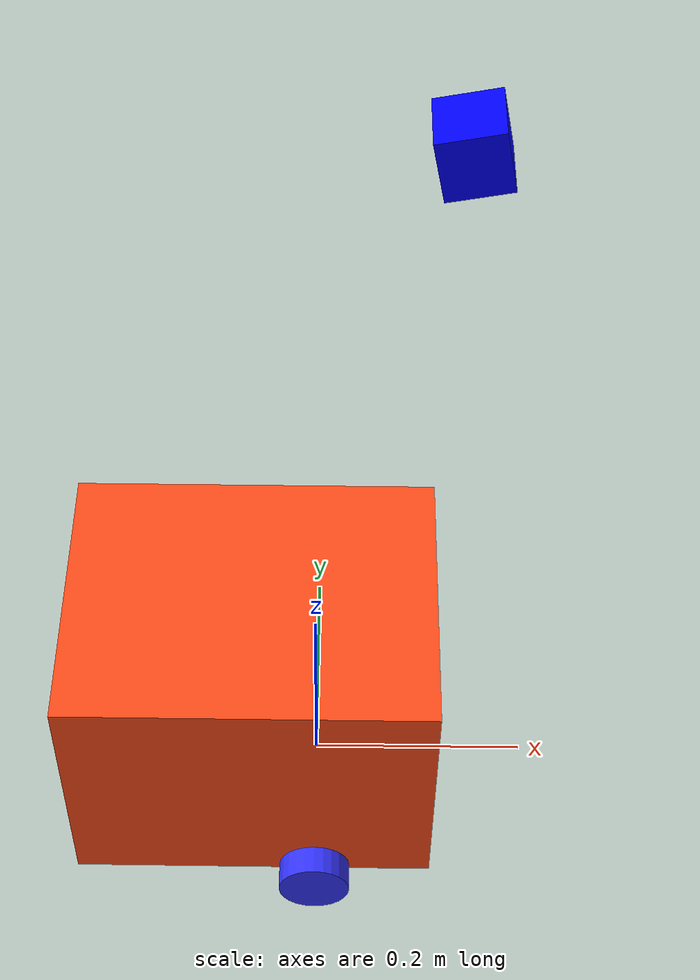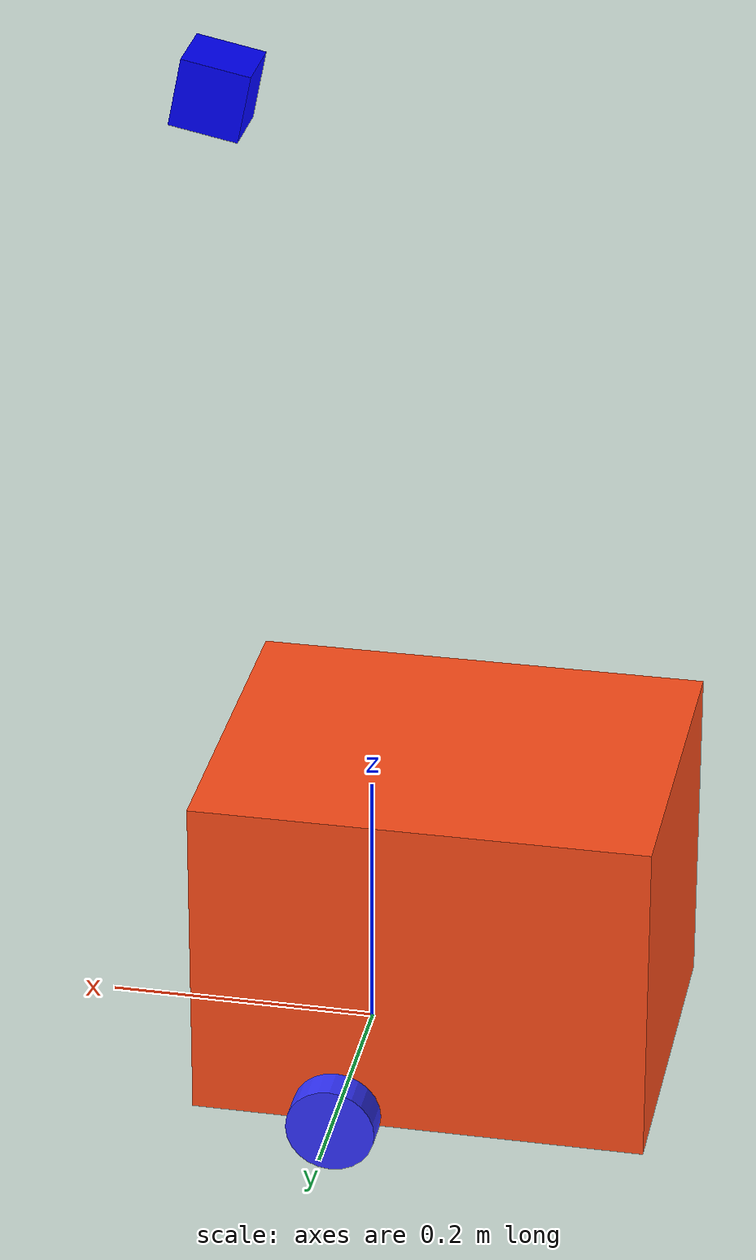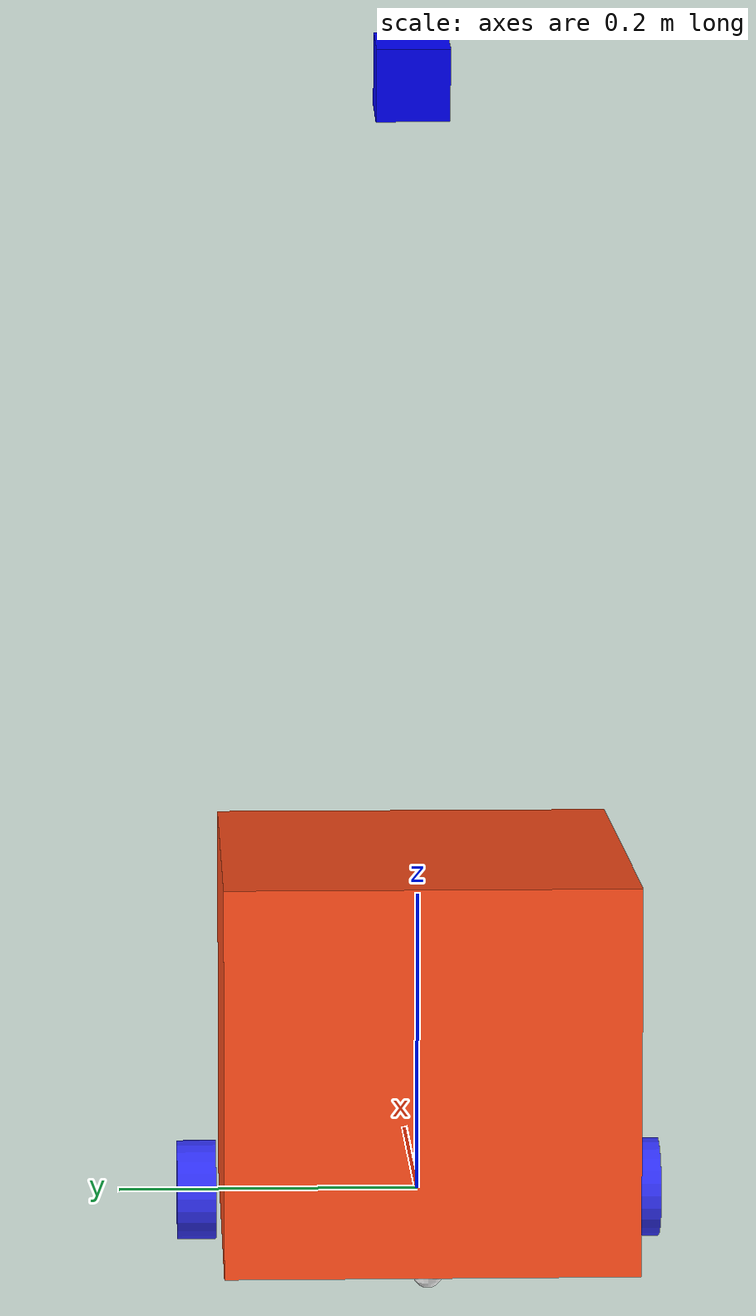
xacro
<?xml version="1.0"?>
<robot xmlns:xacro="http://www.ros.org/wiki/xacro" name="cbrn_robot">

  <xacro:arg name="use_ros2_control" default="true"/>
  <xacro:arg name="sim_mode" default="true"/>

  <xacro:include filename="robot_core.xacro" />
  <xacro:include filename="camera.xacro" />

  <xacro:if value="$(arg use_ros2_control)">
    <xacro:include filename="ros2_control.xacro" />
    <xacro:diff_drive_ros2_control sim_mode="$(arg sim_mode)"/>
  </xacro:if>

  <xacro:unless value="$(arg use_ros2_control)">
    <xacro:include filename="gazebo_control.xacro" />
  </xacro:unless>

</robot>

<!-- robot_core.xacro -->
<robot xmlns:xacro="http://www.ros.org/wiki/xacro" >

    <xacro:include filename="inertial_macros.xacro"/>

    <xacro:property name="chassis_length" value="0.335"/>
    <xacro:property name="chassis_width" value="0.265"/>
    <xacro:property name="chassis_height" value="0.25"/>
    <xacro:property name="chassis_mass" value="1.0"/>
    <xacro:property name="wheel_radius" value="0.033"/>
    <xacro:property name="wheel_thickness" value="0.026"/>
    <xacro:property name="wheel_mass" value="0.05"/>
    <xacro:property name="wheel_offset_x" value="0.226"/>
    <xacro:property name="wheel_offset_y" value="0.1485"/>
    <xacro:property name="wheel_offset_z" value="0.01"/>
    <xacro:property name="caster_wheel_radius" value="0.01"/>
    <xacro:property name="caster_wheel_mass" value="0.01"/>
    <xacro:property name="caster_wheel_offset_x" value="0.075"/>
    <xacro:property name="caster_wheel_offset_z" value="${wheel_offset_z - wheel_radius + caster_wheel_radius}"/>

    <material name="white"><color rgba="1 1 1 1" /></material>
    <material name="orange"><color rgba="1 0.3 0.1 1"/></material>
    <material name="blue"><color rgba="0.2 0.2 1 1"/></material>
    <material name="black"><color rgba="0 0 0 1"/></material>
    <material name="red"><color rgba="1 0 0 1"/></material>

    <!-- BASE LINK -->

    <link name="base_link">
    </link>

    <!-- BASE_FOOTPRINT LINK -->

    <joint name="base_footprint_joint" type="fixed">
        <parent link="base_link"/>
        <child link="base_footprint"/>
        <origin xyz="0 0 0" rpy="0 0 0"/>
    </joint>

    <link name="base_footprint">
    </link>

    <!-- CHASSIS LINK -->

    <joint name="chassis_joint" type="fixed">
        <parent link="base_link"/>
        <child link="chassis"/>
        <origin xyz="${-wheel_offset_x} 0 ${-wheel_offset_z}"/>
    </joint>

    <link name="chassis">
        <visual>
            <origin xyz="${chassis_length/2} 0 ${chassis_height/2}"/>
            <geometry>
                <box size="${chassis_length} ${chassis_width} ${chassis_height}"/>
            </geometry>
            <material name="orange"/>
        </visual>
        <collision>
            <origin xyz="${chassis_length/2} 0 ${chassis_height/2}"/>
            <geometry>
                <box size="${chassis_length} ${chassis_width} ${chassis_height}"/>
            </geometry>
        </collision>
        <xacro:inertial_box mass="5.5" x="${chassis_length}" y="${chassis_width}" z="${chassis_height}">
            <origin xyz="${chassis_length/2} 0 ${chassis_height/2}" rpy="0 0 0"/>
        </xacro:inertial_box>
    </link>

    <gazebo reference="chassis">
        <material>Gazebo/Orange</material>
    </gazebo>

    <!-- LEFT WHEEL LINK -->

    <joint name="left_wheel_joint" type="continuous">
        <parent link="base_link"/>
        <child link="left_wheel_link"/>
        <origin xyz="0 ${wheel_offset_y} 0" rpy="-${pi/2} 0 0" />
        <axis xyz="0 0 1"/>
    </joint>

    <link name="left_wheel_link">
        <visual>
            <geometry>
                <cylinder radius="${wheel_radius}" length="${wheel_thickness}"/>
            </geometry>
            <material name="blue"/>
        </visual>
        <collision>
            <geometry>
                <cylinder radius="${wheel_radius}" length="${wheel_thickness}"/>
            </geometry>
        </collision>
        <xacro:inertial_cylinder mass="${wheel_mass}" length="${wheel_thickness}" radius="${wheel_radius}">
            <origin xyz="0 0 0" rpy="0 0 0"/>
        </xacro:inertial_cylinder>
    </link>

    <gazebo reference="left_wheel_link">
        <material>Gazebo/Blue</material>
        <mu1>1.0</mu1>
        <mu2>1.0</mu2>
        <kp>1000000.0</kp>
        <kd>100.0</kd>
        <minDepth>0.001</minDepth>
    </gazebo>

    <!-- RIGHT WHEEL LINK -->

    <joint name="right_wheel_joint" type="continuous">
        <parent link="base_link"/>
        <child link="right_wheel_link"/>
        <origin xyz="0 ${-wheel_offset_y} 0" rpy="${pi/2} 0 0" />
        <axis xyz="0 0 -1"/>
    </joint>

    <link name="right_wheel_link">
        <visual>
            <geometry>
                <cylinder radius="${wheel_radius}" length="${wheel_thickness}"/>
            </geometry>
            <material name="blue"/>
        </visual>
        <collision>
            <geometry>
                <cylinder radius="${wheel_radius}" length="${wheel_thickness}"/>
            </geometry>
        </collision>
        <xacro:inertial_cylinder mass="${wheel_mass}" length="${wheel_thickness}" radius="${wheel_radius}">
            <origin xyz="0 0 0" rpy="0 0 0"/>
        </xacro:inertial_cylinder>
    </link>

    <gazebo reference="right_wheel_link">
        <material>Gazebo/Blue</material>
        <mu1>1.0</mu1>
        <mu2>1.0</mu2>
        <kp>1000000.0</kp>
        <kd>100.0</kd>
        <minDepth>0.001</minDepth>
    </gazebo>

    <!-- CASTER WHEEL LINK -->

    <joint name="caster_wheel_joint" type="fixed">
        <parent link="chassis"/>
        <child link="caster_wheel"/>
        <origin xyz="${caster_wheel_offset_x} 0 ${caster_wheel_offset_z}"/>
    </joint>

    <link name="caster_wheel">
        <visual>
            <geometry>
                <sphere radius="${caster_wheel_radius}"/>
            </geometry>
            <material name="white"/>
        </visual>
        <collision>
            <geometry>
                <sphere radius="${caster_wheel_radius}"/>
            </geometry>
        </collision>
        <xacro:inertial_sphere mass="${caster_wheel_mass}" radius="${caster_wheel_radius}">
            <origin xyz="0 0 0" rpy="0 0 0"/>
        </xacro:inertial_sphere>
    </link>
    <gazebo reference="caster_wheel">
        <material>Gazebo/White</material>
        <mu1 value="0.001"/>
        <mu2 value="0.001"/>
    </gazebo>

</robot>

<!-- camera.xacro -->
<robot xmlns:xacro="http://www.ros.org/wiki/xacro">

    <xacro:include filename="camera_sensor_macro.xacro"/>
  <!-- Camera joint: poziționează camera pe robot -->
    <joint name="camera_joint" type="fixed">
        <parent link="chassis"/>
        <child link="camera_link"/>
        <!-- Calcul pentru camera ca sa stea lipita de sasiu -->
        <origin xyz="${chassis_length} 0 ${chassis_height + 0.5}" rpy="0 -0.2 0"/>
    </joint>
    <!-- Link minim pentru camera -->
    <link name="camera_link">
        <visual>
        <geometry>
            <box size="0.05 0.05 0.05"/>
        </geometry>
        <material name="blue">
            <color rgba="0 0 1 1"/>
        </material>
        </visual>

        <collision>
        <geometry>
            <box size="0.05 0.05 0.05"/>
        </geometry>
        </collision>

        <inertial>
        <mass value="0.01"/>
        <inertia ixx="0.0001" ixy="0.0" ixz="0.0"
                iyy="0.0001" iyz="0.0"
                izz="0.0001"/>
        </inertial>
    </link>

    <gazebo reference="camera_link">
        <xacro:camera_sensor_macro/>
    </gazebo>

</robot>
